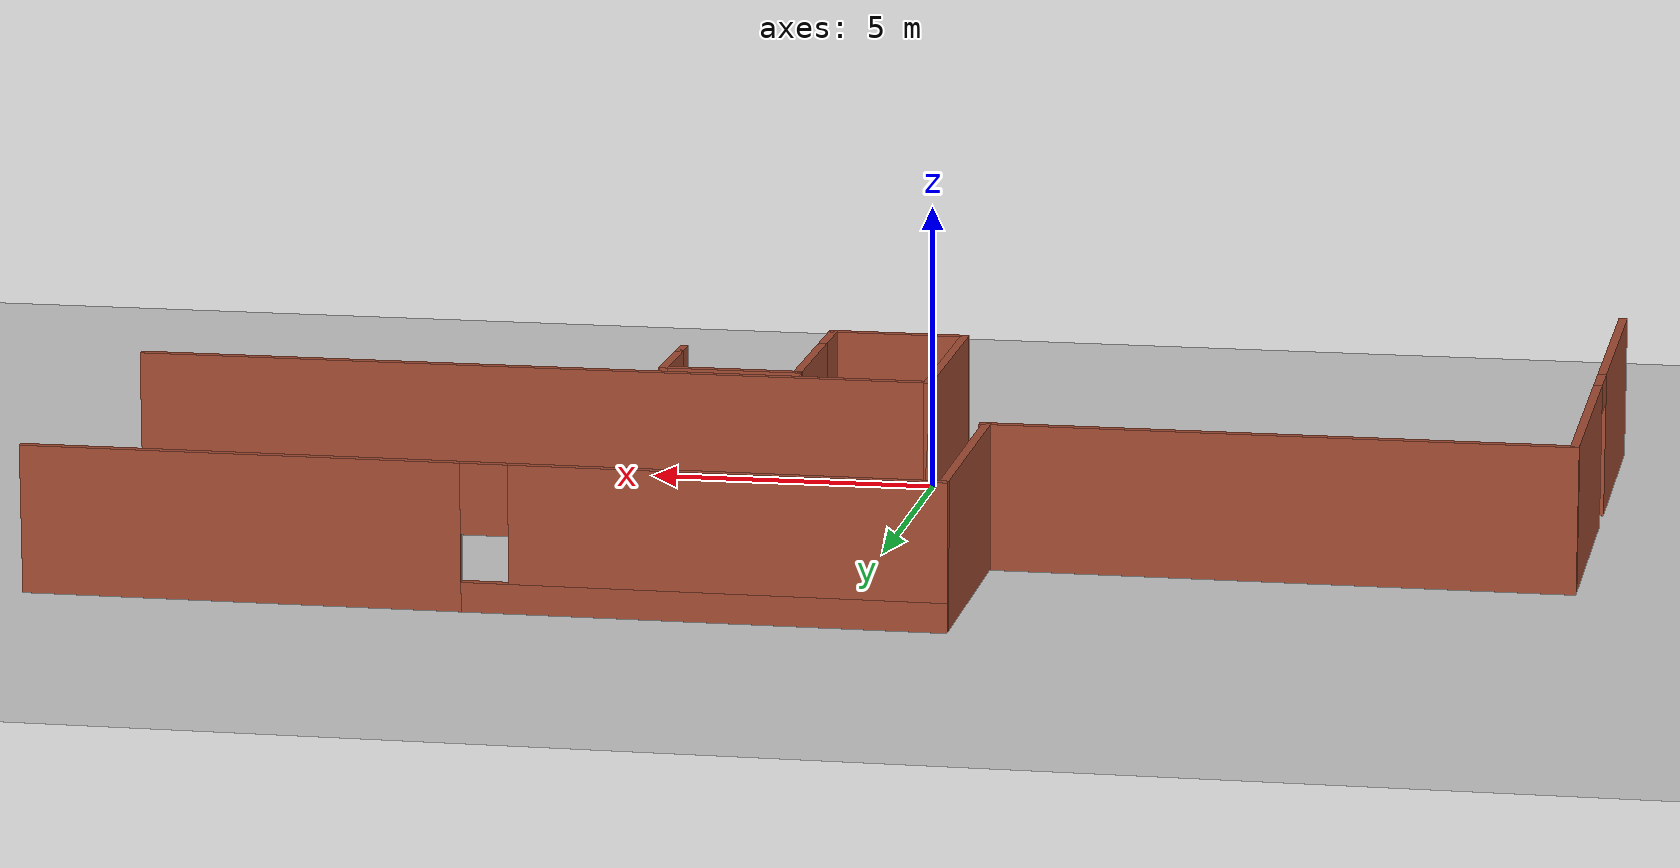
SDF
<sdf version="1.6">
 <world name="default">
  <model name="ground_plane">
   <static>1</static>
   <link name="link">
    <collision name="collision">
     <geometry><plane><normal>0 0 1</normal><size>100 100</size></plane></geometry>
     <surface><friction><ode><mu>100</mu><mu2>50</mu2></ode></friction></surface>
    </collision>
    <visual name="visual">
     <cast_shadows>0</cast_shadows>
     <geometry><plane><normal>0 0 1</normal><size>100 100</size></plane></geometry>
     <material>
      <script><uri>file://media/materials/scripts/gazebo.material</uri><name>Gazebo/Grey</name></script>
     </material>
    </visual>
   </link>
  </model>
  <model name="bookshelf">
   <static>1</static>
   <link name="link">
    <inertial><mass>1</mass></inertial>
    <collision name="back">
     <pose>0 0.005 0.6 0 -0 0</pose>
     <geometry><box><size>0.9 0.01 1.2</size></box></geometry>
    </collision>
    <visual name="visual1">
     <pose>0 0.005 0.6 0 -0 0</pose>
     <geometry><box><size>0.9 0.01 1.2</size></box></geometry>
     <material>
      <script><uri>file://media/materials/scripts/gazebo.material</uri><name>Gazebo/Wood</name></script>
     </material>
    </visual>
    <collision name="left_side">
     <pose>0.45 -0.195 0.6 0 -0 0</pose>
     <geometry><box><size>0.02 0.4 1.2</size></box></geometry>
    </collision>
    <visual name="visual2">
     <pose>0.45 -0.195 0.6 0 -0 0</pose>
     <geometry><box><size>0.02 0.4 1.2</size></box></geometry>
     <material>
      <script><uri>file://media/materials/scripts/gazebo.material</uri><name>Gazebo/Wood</name></script>
     </material>
    </visual>
    <collision name="right_side">
     <pose>-0.45 -0.195 0.6 0 -0 0</pose>
     <geometry><box><size>0.02 0.4 1.2</size></box></geometry>
    </collision>
    <visual name="visual3">
     <pose>-0.45 -0.195 0.6 0 -0 0</pose>
     <geometry><box><size>0.02 0.4 1.2</size></box></geometry>
     <material>
      <script><uri>file://media/materials/scripts/gazebo.material</uri><name>Gazebo/Wood</name></script>
     </material>
    </visual>
    <collision name="bottom">
     <pose>0 -0.195 0.03 0 -0 0</pose>
     <geometry><box><size>0.88 0.4 0.06</size></box></geometry>
    </collision>
    <visual name="visual4">
     <pose>0 -0.195 0.03 0 -0 0</pose>
     <geometry><box><size>0.88 0.4 0.06</size></box></geometry>
     <material>
      <script><uri>file://media/materials/scripts/gazebo.material</uri><name>Gazebo/Wood</name></script>
     </material>
    </visual>
    <collision name="top">
     <pose>0 -0.195 1.19 0 -0 0</pose>
     <geometry><box><size>0.88 0.4 0.02</size></box></geometry>
    </collision>
    <visual name="visual5">
     <pose>0 -0.195 1.19 0 -0 0</pose>
     <geometry><box><size>0.88 0.4 0.02</size></box></geometry>
     <material>
      <script><uri>file://media/materials/scripts/gazebo.material</uri><name>Gazebo/Wood</name></script>
     </material>
    </visual>
    <collision name="low_shelf">
     <pose>0 -0.195 0.43 0 -0 0</pose>
     <geometry><box><size>0.88 0.4 0.02</size></box></geometry>
    </collision>
    <visual name="visual6">
     <pose>0 -0.195 0.43 0 -0 0</pose>
     <geometry><box><size>0.88 0.4 0.02</size></box></geometry>
     <material>
      <script><uri>file://media/materials/scripts/gazebo.material</uri><name>Gazebo/Wood</name></script>
     </material>
    </visual>
    <collision name="high_shelf">
     <pose>0 -0.195 0.8 0 -0 0</pose>
     <geometry><box><size>0.88 0.4 0.02</size></box></geometry>
    </collision>
    <visual name="visual7">
     <pose>0 -0.195 0.8 0 -0 0</pose>
     <geometry><box><size>0.88 0.4 0.02</size></box></geometry>
     <material>
      <script><uri>file://media/materials/scripts/gazebo.material</uri><name>Gazebo/Wood</name></script>
     </material>
    </visual>
   </link>
   <pose>3.27707 2.05989 0 0 -0 0</pose>
  </model>
  <model name="apartment_model">
   <link name="Wall_1">
    <pose>-13.3 2.8 0 0 -0 3.14159</pose>
    <visual name="Wall_1_Visual">
     <pose>0 0 1.25 0 -0 0</pose>
     <geometry><box><size>10 0.15 2.5</size></box></geometry>
     <material>
      <script><uri>file://media/materials/scripts/gazebo.material</uri><name>Gazebo/Bricks</name></script>
      <ambient>1 1 1 1</ambient>
      <diffuse>1 1 1 1</diffuse>
      <specular>0.2 0.2 0.2 1</specular>
      <emissive>0 0 0 1</emissive>
     </material>
    </visual>
    <collision name="Wall_1_Collision">
     <pose>0 0 1.25 0 -0 0</pose>
     <geometry><box><size>10 0.15 2.5</size></box></geometry>
     <surface>
      <friction>
       <ode><mu>1</mu><mu2>1</mu2><fdir1>0 0 0</fdir1><slip1>0</slip1><slip2>0</slip2></ode>
       <torsional>
        <coefficient>1</coefficient>
        <patch_radius>0</patch_radius>
        <surface_radius>0</surface_radius>
        <use_patch_radius>1</use_patch_radius>
        <ode><slip>0</slip></ode>
       </torsional>
      </friction>
      <bounce><restitution_coefficient>0</restitution_coefficient><threshold>1e+06</threshold></bounce>
      <contact>
       <collide_without_contact>0</collide_without_contact>
       <collide_without_contact_bitmask>1</collide_without_contact_bitmask>
       <collide_bitmask>1</collide_bitmask>
       <ode>
        <soft_cfm>0</soft_cfm>
        <soft_erp>0.2</soft_erp>
        <kp>1e+13</kp>
        <kd>1</kd>
        <max_vel>0.01</max_vel>
        <min_depth>0</min_depth>
       </ode>
       <bullet>
        <split_impulse>1</split_impulse>
        <split_impulse_penetration_threshold>-0.01</split_impulse_penetration_threshold>
        <soft_cfm>0</soft_cfm>
        <soft_erp>0.2</soft_erp>
        <kp>1e+13</kp>
        <kd>1</kd>
       </bullet>
      </contact>
     </surface>
    </collision>
   </link>
   <link name="Wall_10">
    <pose>-4.575 -3.5 0 0 0 -1.5708</pose>
    <visual name="Wall_10_Visual">
     <pose>0 0 1.25 0 -0 0</pose>
     <geometry><box><size>1.25 0.15 2.5</size></box></geometry>
     <material>
      <script><uri>file://media/materials/scripts/gazebo.material</uri><name>Gazebo/Bricks</name></script>
      <ambient>1 1 1 1</ambient>
      <diffuse>1 1 1 1</diffuse>
      <specular>0.2 0.2 0.2 1</specular>
      <emissive>0 0 0 1</emissive>
     </material>
    </visual>
    <collision name="Wall_10_Collision">
     <pose>0 0 1.25 0 -0 0</pose>
     <geometry><box><size>1.25 0.15 2.5</size></box></geometry>
     <surface>
      <friction>
       <ode><mu>1</mu><mu2>1</mu2><fdir1>0 0 0</fdir1><slip1>0</slip1><slip2>0</slip2></ode>
       <torsional>
        <coefficient>1</coefficient>
        <patch_radius>0</patch_radius>
        <surface_radius>0</surface_radius>
        <use_patch_radius>1</use_patch_radius>
        <ode><slip>0</slip></ode>
       </torsional>
      </friction>
      <bounce><restitution_coefficient>0</restitution_coefficient><threshold>1e+06</threshold></bounce>
      <contact>
       <collide_without_contact>0</collide_without_contact>
       <collide_without_contact_bitmask>1</collide_without_contact_bitmask>
       <collide_bitmask>1</collide_bitmask>
       <ode>
        <soft_cfm>0</soft_cfm>
        <soft_erp>0.2</soft_erp>
        <kp>1e+13</kp>
        <kd>1</kd>
        <max_vel>0.01</max_vel>
        <min_depth>0</min_depth>
       </ode>
       <bullet>
        <split_impulse>1</split_impulse>
        <split_impulse_penetration_threshold>-0.01</split_impulse_penetration_threshold>
        <soft_cfm>0</soft_cfm>
        <soft_erp>0.2</soft_erp>
        <kp>1e+13</kp>
        <kd>1</kd>
       </bullet>
      </contact>
     </surface>
    </collision>
   </link>
   <link name="Wall_11">
    <pose>-5.75 -4.05 0 0 -0 3.14159</pose>
    <visual name="Wall_11_Visual">
     <pose>0 0 1.25 0 -0 0</pose>
     <geometry><box><size>2.5 0.15 2.5</size></box></geometry>
     <material>
      <script><uri>file://media/materials/scripts/gazebo.material</uri><name>Gazebo/Bricks</name></script>
      <ambient>1 1 1 1</ambient>
      <diffuse>1 1 1 1</diffuse>
      <specular>0.2 0.2 0.2 1</specular>
      <emissive>0 0 0 1</emissive>
     </material>
    </visual>
    <collision name="Wall_11_Collision">
     <pose>0 0 1.25 0 -0 0</pose>
     <geometry><box><size>2.5 0.15 2.5</size></box></geometry>
     <surface>
      <friction>
       <ode><mu>1</mu><mu2>1</mu2><fdir1>0 0 0</fdir1><slip1>0</slip1><slip2>0</slip2></ode>
       <torsional>
        <coefficient>1</coefficient>
        <patch_radius>0</patch_radius>
        <surface_radius>0</surface_radius>
        <use_patch_radius>1</use_patch_radius>
        <ode><slip>0</slip></ode>
       </torsional>
      </friction>
      <bounce><restitution_coefficient>0</restitution_coefficient><threshold>1e+06</threshold></bounce>
      <contact>
       <collide_without_contact>0</collide_without_contact>
       <collide_without_contact_bitmask>1</collide_without_contact_bitmask>
       <collide_bitmask>1</collide_bitmask>
       <ode>
        <soft_cfm>0</soft_cfm>
        <soft_erp>0.2</soft_erp>
        <kp>1e+13</kp>
        <kd>1</kd>
        <max_vel>0.01</max_vel>
        <min_depth>0</min_depth>
       </ode>
       <bullet>
        <split_impulse>1</split_impulse>
        <split_impulse_penetration_threshold>-0.01</split_impulse_penetration_threshold>
        <soft_cfm>0</soft_cfm>
        <soft_erp>0.2</soft_erp>
        <kp>1e+13</kp>
        <kd>1</kd>
       </bullet>
      </contact>
     </surface>
    </collision>
   </link>
   <link name="Wall_14">
    <pose>-6.925 -2.125 0 0 -0 1.5708</pose>
    <visual name="Wall_14_Visual">
     <pose>0 0 1.25 0 -0 0</pose>
     <geometry><box><size>4 0.15 2.5</size></box></geometry>
     <material>
      <script><uri>file://media/materials/scripts/gazebo.material</uri><name>Gazebo/Bricks</name></script>
      <ambient>1 1 1 1</ambient>
      <diffuse>1 1 1 1</diffuse>
      <specular>0.2 0.2 0.2 1</specular>
      <emissive>0 0 0 1</emissive>
     </material>
    </visual>
    <collision name="Wall_14_Collision">
     <pose>0 0 1.25 0 -0 0</pose>
     <geometry><box><size>4 0.15 2.5</size></box></geometry>
     <surface>
      <friction>
       <ode><mu>1</mu><mu2>1</mu2><fdir1>0 0 0</fdir1><slip1>0</slip1><slip2>0</slip2></ode>
       <torsional>
        <coefficient>1</coefficient>
        <patch_radius>0</patch_radius>
        <surface_radius>0</surface_radius>
        <use_patch_radius>1</use_patch_radius>
        <ode><slip>0</slip></ode>
       </torsional>
      </friction>
      <bounce><restitution_coefficient>0</restitution_coefficient><threshold>1e+06</threshold></bounce>
      <contact>
       <collide_without_contact>0</collide_without_contact>
       <collide_without_contact_bitmask>1</collide_without_contact_bitmask>
       <collide_bitmask>1</collide_bitmask>
       <ode>
        <soft_cfm>0</soft_cfm>
        <soft_erp>0.2</soft_erp>
        <kp>1e+13</kp>
        <kd>1</kd>
        <max_vel>0.01</max_vel>
        <min_depth>0</min_depth>
       </ode>
       <bullet>
        <split_impulse>1</split_impulse>
        <split_impulse_penetration_threshold>-0.01</split_impulse_penetration_threshold>
        <soft_cfm>0</soft_cfm>
        <soft_erp>0.2</soft_erp>
        <kp>1e+13</kp>
        <kd>1</kd>
       </bullet>
      </contact>
     </surface>
    </collision>
   </link>
   <link name="Wall_15">
    <pose>0 -0.2 0 0 -0 0</pose>
    <visual name="Wall_15_Visual">
     <pose>0 0 1.25 0 -0 0</pose>
     <geometry><box><size>14 0.15 2.5</size></box></geometry>
     <material>
      <script><uri>file://media/materials/scripts/gazebo.material</uri><name>Gazebo/Bricks</name></script>
      <ambient>1 1 1 1</ambient>
      <diffuse>1 1 1 1</diffuse>
      <specular>0.2 0.2 0.2 1</specular>
      <emissive>0 0 0 1</emissive>
     </material>
    </visual>
    <collision name="Wall_15_Collision">
     <pose>0 0 1.25 0 -0 0</pose>
     <geometry><box><size>14 0.15 2.5</size></box></geometry>
     <surface>
      <friction>
       <ode><mu>1</mu><mu2>1</mu2><fdir1>0 0 0</fdir1><slip1>0</slip1><slip2>0</slip2></ode>
       <torsional>
        <coefficient>1</coefficient>
        <patch_radius>0</patch_radius>
        <surface_radius>0</surface_radius>
        <use_patch_radius>1</use_patch_radius>
        <ode><slip>0</slip></ode>
       </torsional>
      </friction>
      <bounce><restitution_coefficient>0</restitution_coefficient><threshold>1e+06</threshold></bounce>
      <contact>
       <collide_without_contact>0</collide_without_contact>
       <collide_without_contact_bitmask>1</collide_without_contact_bitmask>
       <collide_bitmask>1</collide_bitmask>
       <ode>
        <soft_cfm>0</soft_cfm>
        <soft_erp>0.2</soft_erp>
        <kp>1e+13</kp>
        <kd>1</kd>
        <max_vel>0.01</max_vel>
        <min_depth>0</min_depth>
       </ode>
       <bullet>
        <split_impulse>1</split_impulse>
        <split_impulse_penetration_threshold>-0.01</split_impulse_penetration_threshold>
        <soft_cfm>0</soft_cfm>
        <soft_erp>0.2</soft_erp>
        <kp>1e+13</kp>
        <kd>1</kd>
       </bullet>
      </contact>
     </surface>
    </collision>
   </link>
   <link name="Wall_17">
    <pose>-0.75 7.15 0 0 -0 3.14159</pose>
    <visual name="Wall_17_Visual_0">
     <pose>-4.03161 0 1.25 0 -0 0</pose>
     <geometry><box><size>7.43678 0.15 2.5</size></box></geometry>
     <material>
      <script><uri>file://media/materials/scripts/gazebo.material</uri><name>Gazebo/Bricks</name></script>
      <ambient>1 1 1 1</ambient>
      <diffuse>1 1 1 1</diffuse>
      <specular>0.2 0.2 0.2 1</specular>
      <emissive>0 0 0 1</emissive>
     </material>
    </visual>
    <visual name="Wall_17_Visual_1">
     <pose>3.71839 0 0.25 0 -0 0</pose>
     <geometry><box><size>8.06322 0.15 0.5</size></box></geometry>
     <material>
      <script><uri>file://media/materials/scripts/gazebo.material</uri><name>Gazebo/Bricks</name></script>
      <ambient>1 1 1 1</ambient>
      <diffuse>1 1 1 1</diffuse>
      <specular>0.2 0.2 0.2 1</specular>
      <emissive>0 0 0 1</emissive>
     </material>
    </visual>
    <visual name="Wall_17_Visual_2">
     <pose>4.11839 0 1.5 0 -0 0</pose>
     <geometry><box><size>7.26322 0.15 2</size></box></geometry>
     <material>
      <script><uri>file://media/materials/scripts/gazebo.material</uri><name>Gazebo/Bricks</name></script>
      <ambient>1 1 1 1</ambient>
      <diffuse>1 1 1 1</diffuse>
      <specular>0.2 0.2 0.2 1</specular>
      <emissive>0 0 0 1</emissive>
     </material>
    </visual>
    <visual name="Wall_17_Visual_3">
     <pose>0.086778 0 1.9 0 -0 0</pose>
     <geometry><box><size>0.8 0.15 1.2</size></box></geometry>
     <material>
      <script><uri>file://media/materials/scripts/gazebo.material</uri><name>Gazebo/Bricks</name></script>
      <ambient>1 1 1 1</ambient>
      <diffuse>1 1 1 1</diffuse>
      <specular>0.2 0.2 0.2 1</specular>
      <emissive>0 0 0 1</emissive>
     </material>
    </visual>
    <collision name="Wall_17_Collision_0">
     <pose>-4.03161 0 1.25 0 -0 0</pose>
     <geometry><box><size>7.43678 0.15 2.5</size></box></geometry>
     <surface>
      <friction>
       <ode><mu>1</mu><mu2>1</mu2><fdir1>0 0 0</fdir1><slip1>0</slip1><slip2>0</slip2></ode>
       <torsional>
        <coefficient>1</coefficient>
        <patch_radius>0</patch_radius>
        <surface_radius>0</surface_radius>
        <use_patch_radius>1</use_patch_radius>
        <ode><slip>0</slip></ode>
       </torsional>
      </friction>
      <bounce><restitution_coefficient>0</restitution_coefficient><threshold>1e+06</threshold></bounce>
      <contact>
       <collide_without_contact>0</collide_without_contact>
       <collide_without_contact_bitmask>1</collide_without_contact_bitmask>
       <collide_bitmask>1</collide_bitmask>
       <ode>
        <soft_cfm>0</soft_cfm>
        <soft_erp>0.2</soft_erp>
        <kp>1e+13</kp>
        <kd>1</kd>
        <max_vel>0.01</max_vel>
        <min_depth>0</min_depth>
       </ode>
       <bullet>
        <split_impulse>1</split_impulse>
        <split_impulse_penetration_threshold>-0.01</split_impulse_penetration_threshold>
        <soft_cfm>0</soft_cfm>
        <soft_erp>0.2</soft_erp>
        <kp>1e+13</kp>
        <kd>1</kd>
       </bullet>
      </contact>
     </surface>
    </collision>
    <collision name="Wall_17_Collision_1">
     <pose>3.71839 0 0.25 0 -0 0</pose>
     <geometry><box><size>8.06322 0.15 0.5</size></box></geometry>
     <surface>
      <friction>
       <ode><mu>1</mu><mu2>1</mu2><fdir1>0 0 0</fdir1><slip1>0</slip1><slip2>0</slip2></ode>
       <torsional>
        <coefficient>1</coefficient>
        <patch_radius>0</patch_radius>
        <surface_radius>0</surface_radius>
        <use_patch_radius>1</use_patch_radius>
        <ode><slip>0</slip></ode>
       </torsional>
      </friction>
      <bounce><restitution_coefficient>0</restitution_coefficient><threshold>1e+06</threshold></bounce>
      <contact>
       <collide_without_contact>0</collide_without_contact>
       <collide_without_contact_bitmask>1</collide_without_contact_bitmask>
       <collide_bitmask>1</collide_bitmask>
       <ode>
        <soft_cfm>0</soft_cfm>
        <soft_erp>0.2</soft_erp>
        <kp>1e+13</kp>
        <kd>1</kd>
        <max_vel>0.01</max_vel>
        <min_depth>0</min_depth>
       </ode>
       <bullet>
        <split_impulse>1</split_impulse>
        <split_impulse_penetration_threshold>-0.01</split_impulse_penetration_threshold>
        <soft_cfm>0</soft_cfm>
        <soft_erp>0.2</soft_erp>
        <kp>1e+13</kp>
        <kd>1</kd>
       </bullet>
      </contact>
     </surface>
    </collision>
    <collision name="Wall_17_Collision_2">
     <pose>4.11839 0 1.5 0 -0 0</pose>
     <geometry><box><size>7.26322 0.15 2</size></box></geometry>
     <surface>
      <friction>
       <ode><mu>1</mu><mu2>1</mu2><fdir1>0 0 0</fdir1><slip1>0</slip1><slip2>0</slip2></ode>
       <torsional>
        <coefficient>1</coefficient>
        <patch_radius>0</patch_radius>
        <surface_radius>0</surface_radius>
        <use_patch_radius>1</use_patch_radius>
        <ode><slip>0</slip></ode>
       </torsional>
      </friction>
      <bounce><restitution_coefficient>0</restitution_coefficient><threshold>1e+06</threshold></bounce>
      <contact>
       <collide_without_contact>0</collide_without_contact>
       <collide_without_contact_bitmask>1</collide_without_contact_bitmask>
       <collide_bitmask>1</collide_bitmask>
       <ode>
        <soft_cfm>0</soft_cfm>
        <soft_erp>0.2</soft_erp>
        <kp>1e+13</kp>
        <kd>1</kd>
        <max_vel>0.01</max_vel>
        <min_depth>0</min_depth>
       </ode>
       <bullet>
        <split_impulse>1</split_impulse>
        <split_impulse_penetration_threshold>-0.01</split_impulse_penetration_threshold>
        <soft_cfm>0</soft_cfm>
        <soft_erp>0.2</soft_erp>
        <kp>1e+13</kp>
        <kd>1</kd>
       </bullet>
      </contact>
     </surface>
    </collision>
    <collision name="Wall_17_Collision_3">
     <pose>0.086778 0 1.9 0 -0 0</pose>
     <geometry><box><size>0.8 0.15 1.2</size></box></geometry>
     <surface>
      <friction>
       <ode><mu>1</mu><mu2>1</mu2><fdir1>0 0 0</fdir1><slip1>0</slip1><slip2>0</slip2></ode>
       <torsional>
        <coefficient>1</coefficient>
        <patch_radius>0</patch_radius>
        <surface_radius>0</surface_radius>
        <use_patch_radius>1</use_patch_radius>
        <ode><slip>0</slip></ode>
       </torsional>
      </friction>
      <bounce><restitution_coefficient>0</restitution_coefficient><threshold>1e+06</threshold></bounce>
      <contact>
       <collide_without_contact>0</collide_without_contact>
       <collide_without_contact_bitmask>1</collide_without_contact_bitmask>
       <collide_bitmask>1</collide_bitmask>
       <ode>
        <soft_cfm>0</soft_cfm>
        <soft_erp>0.2</soft_erp>
        <kp>1e+13</kp>
        <kd>1</kd>
        <max_vel>0.01</max_vel>
        <min_depth>0</min_depth>
       </ode>
       <bullet>
        <split_impulse>1</split_impulse>
        <split_impulse_penetration_threshold>-0.01</split_impulse_penetration_threshold>
        <soft_cfm>0</soft_cfm>
        <soft_erp>0.2</soft_erp>
        <kp>1e+13</kp>
        <kd>1</kd>
       </bullet>
      </contact>
     </surface>
    </collision>
   </link>
   <link name="Wall_18">
    <pose>-8.425 4.975 0 0 0 -1.5708</pose>
    <visual name="Wall_18_Visual">
     <pose>0 0 1.25 0 -0 0</pose>
     <geometry><box><size>4.5 0.15 2.5</size></box></geometry>
     <material>
      <script><uri>file://media/materials/scripts/gazebo.material</uri><name>Gazebo/Bricks</name></script>
      <ambient>1 1 1 1</ambient>
      <diffuse>1 1 1 1</diffuse>
      <specular>0.2 0.2 0.2 1</specular>
      <emissive>0 0 0 1</emissive>
     </material>
    </visual>
    <collision name="Wall_18_Collision">
     <pose>0 0 1.25 0 -0 0</pose>
     <geometry><box><size>4.5 0.15 2.5</size></box></geometry>
     <surface>
      <friction>
       <ode><mu>1</mu><mu2>1</mu2><fdir1>0 0 0</fdir1><slip1>0</slip1><slip2>0</slip2></ode>
       <torsional>
        <coefficient>1</coefficient>
        <patch_radius>0</patch_radius>
        <surface_radius>0</surface_radius>
        <use_patch_radius>1</use_patch_radius>
        <ode><slip>0</slip></ode>
       </torsional>
      </friction>
      <bounce><restitution_coefficient>0</restitution_coefficient><threshold>1e+06</threshold></bounce>
      <contact>
       <collide_without_contact>0</collide_without_contact>
       <collide_without_contact_bitmask>1</collide_without_contact_bitmask>
       <collide_bitmask>1</collide_bitmask>
       <ode>
        <soft_cfm>0</soft_cfm>
        <soft_erp>0.2</soft_erp>
        <kp>1e+13</kp>
        <kd>1</kd>
        <max_vel>0.01</max_vel>
        <min_depth>0</min_depth>
       </ode>
       <bullet>
        <split_impulse>1</split_impulse>
        <split_impulse_penetration_threshold>-0.01</split_impulse_penetration_threshold>
        <soft_cfm>0</soft_cfm>
        <soft_erp>0.2</soft_erp>
        <kp>1e+13</kp>
        <kd>1</kd>
       </bullet>
      </contact>
     </surface>
    </collision>
   </link>
   <link name="Wall_27">
    <pose>-2.225 -2.125 0 0 -0 1.5708</pose>
    <visual name="Wall_27_Visual">
     <pose>0 0 1.25 0 -0 0</pose>
     <geometry><box><size>0.5 0.15 2.5</size></box></geometry>
     <material>
      <script><uri>file://media/materials/scripts/gazebo.material</uri><name>Gazebo/Bricks</name></script>
      <ambient>1 1 1 1</ambient>
      <diffuse>1 1 1 1</diffuse>
      <specular>0.2 0.2 0.2 1</specular>
      <emissive>0 0 0 1</emissive>
     </material>
    </visual>
    <collision name="Wall_27_Collision">
     <pose>0 0 1.25 0 -0 0</pose>
     <geometry><box><size>0.5 0.15 2.5</size></box></geometry>
     <surface>
      <friction>
       <ode><mu>1</mu><mu2>1</mu2><fdir1>0 0 0</fdir1><slip1>0</slip1><slip2>0</slip2></ode>
       <torsional>
        <coefficient>1</coefficient>
        <patch_radius>0</patch_radius>
        <surface_radius>0</surface_radius>
        <use_patch_radius>1</use_patch_radius>
        <ode><slip>0</slip></ode>
       </torsional>
      </friction>
      <bounce><restitution_coefficient>0</restitution_coefficient><threshold>1e+06</threshold></bounce>
      <contact>
       <collide_without_contact>0</collide_without_contact>
       <collide_without_contact_bitmask>1</collide_without_contact_bitmask>
       <collide_bitmask>1</collide_bitmask>
       <ode>
        <soft_cfm>0</soft_cfm>
        <soft_erp>0.2</soft_erp>
        <kp>1e+13</kp>
        <kd>1</kd>
        <max_vel>0.01</max_vel>
        <min_depth>0</min_depth>
       </ode>
       <bullet>
        <split_impulse>1</split_impulse>
        <split_impulse_penetration_threshold>-0.01</split_impulse_penetration_threshold>
        <soft_cfm>0</soft_cfm>
        <soft_erp>0.2</soft_erp>
        <kp>1e+13</kp>
        <kd>1</kd>
       </bullet>
      </contact>
     </surface>
    </collision>
   </link>
   <link name="Wall_3">
    <pose>-18.225 -2.375 0 0 0 -1.5708</pose>
    <visual name="Wall_3_Visual_0">
     <pose>-2.83035 0 1.25 0 -0 0</pose>
     <geometry><box><size>4.8393 0.15 2.5</size></box></geometry>
     <material>
      <script><uri>file://media/materials/scripts/gazebo.material</uri><name>Gazebo/Bricks</name></script>
      <ambient>1 1 1 1</ambient>
      <diffuse>1 1 1 1</diffuse>
      <specular>0.2 0.2 0.2 1</specular>
      <emissive>0 0 0 1</emissive>
     </material>
    </visual>
    <visual name="Wall_3_Visual_1">
     <pose>2.86965 0 1.25 0 -0 0</pose>
     <geometry><box><size>4.7607 0.15 2.5</size></box></geometry>
     <material>
      <script><uri>file://media/materials/scripts/gazebo.material</uri><name>Gazebo/Bricks</name></script>
      <ambient>1 1 1 1</ambient>
      <diffuse>1 1 1 1</diffuse>
      <specular>0.2 0.2 0.2 1</specular>
      <emissive>0 0 0 1</emissive>
     </material>
    </visual>
    <visual name="Wall_3_Visual_2">
     <pose>0.039298 0 2.25 0 -0 0</pose>
     <geometry><box><size>0.9 0.15 0.5</size></box></geometry>
     <material>
      <script><uri>file://media/materials/scripts/gazebo.material</uri><name>Gazebo/Bricks</name></script>
      <ambient>1 1 1 1</ambient>
      <diffuse>1 1 1 1</diffuse>
      <specular>0.2 0.2 0.2 1</specular>
      <emissive>0 0 0 1</emissive>
     </material>
    </visual>
    <collision name="Wall_3_Collision_0">
     <pose>-2.83035 0 1.25 0 -0 0</pose>
     <geometry><box><size>4.8393 0.15 2.5</size></box></geometry>
     <surface>
      <friction>
       <ode><mu>1</mu><mu2>1</mu2><fdir1>0 0 0</fdir1><slip1>0</slip1><slip2>0</slip2></ode>
       <torsional>
        <coefficient>1</coefficient>
        <patch_radius>0</patch_radius>
        <surface_radius>0</surface_radius>
        <use_patch_radius>1</use_patch_radius>
        <ode><slip>0</slip></ode>
       </torsional>
      </friction>
      <bounce><restitution_coefficient>0</restitution_coefficient><threshold>1e+06</threshold></bounce>
      <contact>
       <collide_without_contact>0</collide_without_contact>
       <collide_without_contact_bitmask>1</collide_without_contact_bitmask>
       <collide_bitmask>1</collide_bitmask>
       <ode>
        <soft_cfm>0</soft_cfm>
        <soft_erp>0.2</soft_erp>
        <kp>1e+13</kp>
        <kd>1</kd>
        <max_vel>0.01</max_vel>
        <min_depth>0</min_depth>
       </ode>
       <bullet>
        <split_impulse>1</split_impulse>
        <split_impulse_penetration_threshold>-0.01</split_impulse_penetration_threshold>
        <soft_cfm>0</soft_cfm>
        <soft_erp>0.2</soft_erp>
        <kp>1e+13</kp>
        <kd>1</kd>
       </bullet>
      </contact>
     </surface>
    </collision>
    <collision name="Wall_3_Collision_1">
     <pose>2.86965 0 1.25 0 -0 0</pose>
     <geometry><box><size>4.7607 0.15 2.5</size></box></geometry>
     <surface>
      <friction>
       <ode><mu>1</mu><mu2>1</mu2><fdir1>0 0 0</fdir1><slip1>0</slip1><slip2>0</slip2></ode>
       <torsional>
        <coefficient>1</coefficient>
        <patch_radius>0</patch_radius>
        <surface_radius>0</surface_radius>
        <use_patch_radius>1</use_patch_radius>
        <ode><slip>0</slip></ode>
       </torsional>
      </friction>
      <bounce><restitution_coefficient>0</restitution_coefficient><threshold>1e+06</threshold></bounce>
      <contact>
       <collide_without_contact>0</collide_without_contact>
       <collide_without_contact_bitmask>1</collide_without_contact_bitmask>
       <collide_bitmask>1</collide_bitmask>
       <ode>
        <soft_cfm>0</soft_cfm>
        <soft_erp>0.2</soft_erp>
        <kp>1e+13</kp>
        <kd>1</kd>
        <max_vel>0.01</max_vel>
        <min_depth>0</min_depth>
       </ode>
       <bullet>
        <split_impulse>1</split_impulse>
        <split_impulse_penetration_threshold>-0.01</split_impulse_penetration_threshold>
        <soft_cfm>0</soft_cfm>
        <soft_erp>0.2</soft_erp>
        <kp>1e+13</kp>
        <kd>1</kd>
       </bullet>
      </contact>
     </surface>
    </collision>
    <collision name="Wall_3_Collision_2">
     <pose>0.039298 0 2.25 0 -0 0</pose>
     <geometry><box><size>0.9 0.15 0.5</size></box></geometry>
     <surface>
      <friction>
       <ode><mu>1</mu><mu2>1</mu2><fdir1>0 0 0</fdir1><slip1>0</slip1><slip2>0</slip2></ode>
       <torsional>
        <coefficient>1</coefficient>
        <patch_radius>0</patch_radius>
        <surface_radius>0</surface_radius>
        <use_patch_radius>1</use_patch_radius>
        <ode><slip>0</slip></ode>
       </torsional>
      </friction>
      <bounce><restitution_coefficient>0</restitution_coefficient><threshold>1e+06</threshold></bounce>
      <contact>
       <collide_without_contact>0</collide_without_contact>
       <collide_without_contact_bitmask>1</collide_without_contact_bitmask>
       <collide_bitmask>1</collide_bitmask>
       <ode>
        <soft_cfm>0</soft_cfm>
        <soft_erp>0.2</soft_erp>
        <kp>1e+13</kp>
        <kd>1</kd>
        <max_vel>0.01</max_vel>
        <min_depth>0</min_depth>
       </ode>
       <bullet>
        <split_impulse>1</split_impulse>
        <split_impulse_penetration_threshold>-0.01</split_impulse_penetration_threshold>
        <soft_cfm>0</soft_cfm>
        <soft_erp>0.2</soft_erp>
        <kp>1e+13</kp>
        <kd>1</kd>
       </bullet>
      </contact>
     </surface>
    </collision>
   </link>
   <link name="Wall_7">
    <pose>-2.225 -1.275 0 0 -0 1.5708</pose>
    <visual name="Wall_7_Visual">
     <pose>0 0 1.25 0 -0 0</pose>
     <geometry><box><size>1.5 0.15 2.5</size></box></geometry>
     <material>
      <script><uri>file://media/materials/scripts/gazebo.material</uri><name>Gazebo/Bricks</name></script>
      <ambient>1 1 1 1</ambient>
      <diffuse>1 1 1 1</diffuse>
      <specular>0.2 0.2 0.2 1</specular>
      <emissive>0 0 0 1</emissive>
     </material>
    </visual>
    <collision name="Wall_7_Collision">
     <pose>0 0 1.25 0 -0 0</pose>
     <geometry><box><size>1.5 0.15 2.5</size></box></geometry>
     <surface>
      <friction>
       <ode><mu>1</mu><mu2>1</mu2><fdir1>0 0 0</fdir1><slip1>0</slip1><slip2>0</slip2></ode>
       <torsional>
        <coefficient>1</coefficient>
        <patch_radius>0</patch_radius>
        <surface_radius>0</surface_radius>
        <use_patch_radius>1</use_patch_radius>
        <ode><slip>0</slip></ode>
       </torsional>
      </friction>
      <bounce><restitution_coefficient>0</restitution_coefficient><threshold>1e+06</threshold></bounce>
      <contact>
       <collide_without_contact>0</collide_without_contact>
       <collide_without_contact_bitmask>1</collide_without_contact_bitmask>
       <collide_bitmask>1</collide_bitmask>
       <ode>
        <soft_cfm>0</soft_cfm>
        <soft_erp>0.2</soft_erp>
        <kp>1e+13</kp>
        <kd>1</kd>
        <max_vel>0.01</max_vel>
        <min_depth>0</min_depth>
       </ode>
       <bullet>
        <split_impulse>1</split_impulse>
        <split_impulse_penetration_threshold>-0.01</split_impulse_penetration_threshold>
        <soft_cfm>0</soft_cfm>
        <soft_erp>0.2</soft_erp>
        <kp>1e+13</kp>
        <kd>1</kd>
       </bullet>
      </contact>
     </surface>
    </collision>
   </link>
   <link name="Wall_8">
    <pose>-3.4 -0.6 0 0 -0 3.14159</pose>
    <visual name="Wall_8_Visual">
     <pose>0 0 1.25 0 -0 0</pose>
     <geometry><box><size>2.5 0.15 2.5</size></box></geometry>
     <material>
      <script><uri>file://media/materials/scripts/gazebo.material</uri><name>Gazebo/Bricks</name></script>
      <ambient>1 1 1 1</ambient>
      <diffuse>1 1 1 1</diffuse>
      <specular>0.2 0.2 0.2 1</specular>
      <emissive>0 0 0 1</emissive>
     </material>
    </visual>
    <collision name="Wall_8_Collision">
     <pose>0 0 1.25 0 -0 0</pose>
     <geometry><box><size>2.5 0.15 2.5</size></box></geometry>
     <surface>
      <friction>
       <ode><mu>1</mu><mu2>1</mu2><fdir1>0 0 0</fdir1><slip1>0</slip1><slip2>0</slip2></ode>
       <torsional>
        <coefficient>1</coefficient>
        <patch_radius>0</patch_radius>
        <surface_radius>0</surface_radius>
        <use_patch_radius>1</use_patch_radius>
        <ode><slip>0</slip></ode>
       </torsional>
      </friction>
      <bounce><restitution_coefficient>0</restitution_coefficient><threshold>1e+06</threshold></bounce>
      <contact>
       <collide_without_contact>0</collide_without_contact>
       <collide_without_contact_bitmask>1</collide_without_contact_bitmask>
       <collide_bitmask>1</collide_bitmask>
       <ode>
        <soft_cfm>0</soft_cfm>
        <soft_erp>0.2</soft_erp>
        <kp>1e+13</kp>
        <kd>1</kd>
        <max_vel>0.01</max_vel>
        <min_depth>0</min_depth>
       </ode>
       <bullet>
        <split_impulse>1</split_impulse>
        <split_impulse_penetration_threshold>-0.01</split_impulse_penetration_threshold>
        <soft_cfm>0</soft_cfm>
        <soft_erp>0.2</soft_erp>
        <kp>1e+13</kp>
        <kd>1</kd>
       </bullet>
      </contact>
     </surface>
    </collision>
   </link>
   <link name="Wall_9">
    <pose>-4.575 -1.775 0 0 0 -1.5708</pose>
    <visual name="Wall_9_Visual">
     <pose>0 0 1.25 0 -0 0</pose>
     <geometry><box><size>2.5 0.15 2.5</size></box></geometry>
     <material>
      <script><uri>file://media/materials/scripts/gazebo.material</uri><name>Gazebo/Bricks</name></script>
      <ambient>1 1 1 1</ambient>
      <diffuse>1 1 1 1</diffuse>
      <specular>0.2 0.2 0.2 1</specular>
      <emissive>0 0 0 1</emissive>
     </material>
    </visual>
    <collision name="Wall_9_Collision">
     <pose>0 0 1.25 0 -0 0</pose>
     <geometry><box><size>2.5 0.15 2.5</size></box></geometry>
     <surface>
      <friction>
       <ode><mu>1</mu><mu2>1</mu2><fdir1>0 0 0</fdir1><slip1>0</slip1><slip2>0</slip2></ode>
       <torsional>
        <coefficient>1</coefficient>
        <patch_radius>0</patch_radius>
        <surface_radius>0</surface_radius>
        <use_patch_radius>1</use_patch_radius>
        <ode><slip>0</slip></ode>
       </torsional>
      </friction>
      <bounce><restitution_coefficient>0</restitution_coefficient><threshold>1e+06</threshold></bounce>
      <contact>
       <collide_without_contact>0</collide_without_contact>
       <collide_without_contact_bitmask>1</collide_without_contact_bitmask>
       <collide_bitmask>1</collide_bitmask>
       <ode>
        <soft_cfm>0</soft_cfm>
        <soft_erp>0.2</soft_erp>
        <kp>1e+13</kp>
        <kd>1</kd>
        <max_vel>0.01</max_vel>
        <min_depth>0</min_depth>
       </ode>
       <bullet>
        <split_impulse>1</split_impulse>
        <split_impulse_penetration_threshold>-0.01</split_impulse_penetration_threshold>
        <soft_cfm>0</soft_cfm>
        <soft_erp>0.2</soft_erp>
        <kp>1e+13</kp>
        <kd>1</kd>
       </bullet>
      </contact>
     </surface>
    </collision>
   </link>
   <static>1</static>
   <pose>6.54088 2.94888 0 0 -0 0</pose>
  </model>
 </world>
</sdf>
